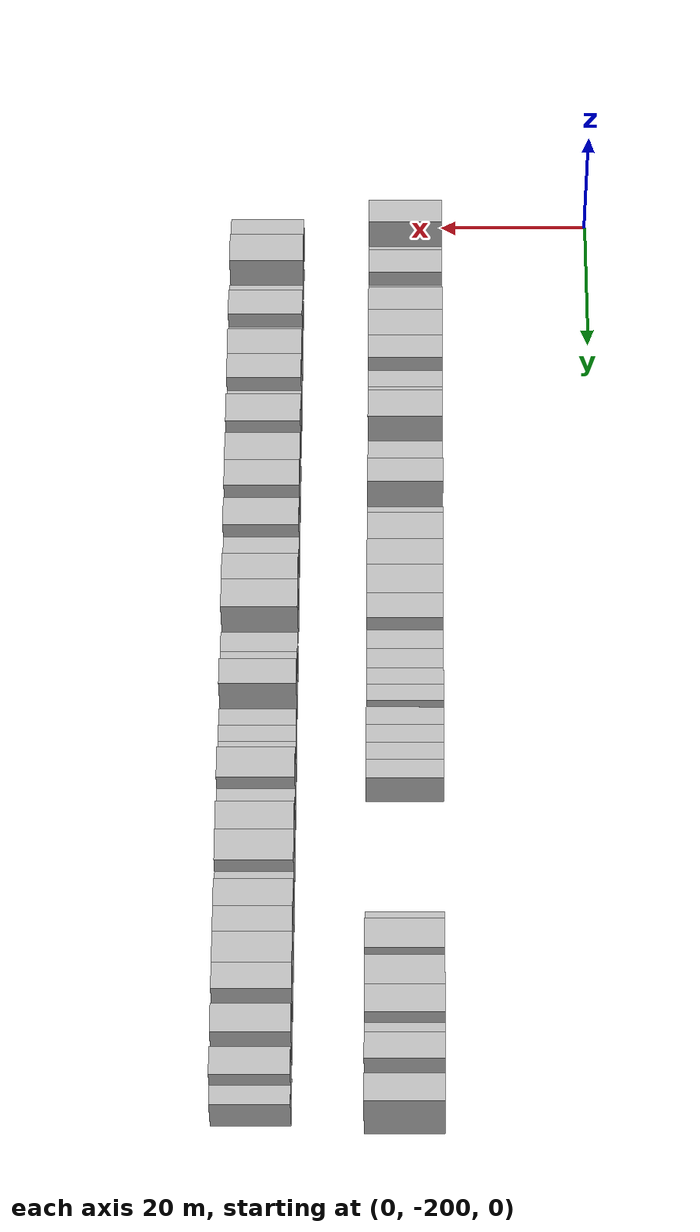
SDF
<sdf version="1.6">
 <world name="default">
  <model name="building_1">
   <static>1</static>
   <pose>25.0000 -196.1759 0 0.000000 0.000000 0.000000</pose>
   <link name="link">
    <pose>0 0 4.50 0 0 0</pose>
    <collision name="collision"><geometry><box><size>10.0000 3.6482 9.0000</size></box></geometry></collision>
    <visual name="visual">
     <cast_shadows>0</cast_shadows>
     <geometry><box><size>10.0000 3.6482 9.0000</size></box></geometry>
     <material>
      <script>
       <uri>model://HANNAS_wall/materials/scripts</uri>
       <uri>model://HANNAS_wall/materials/textures</uri>
       <name>vrc/HANNAS_wall</name>
      </script>
     </material>
    </visual>
   </link>
  </model>
  <model name="building_2">
   <static>1</static>
   <pose>25.0000 -190.9461 0 0.000000 0.000000 0.000000</pose>
   <link name="link">
    <pose>0 0 3.00 0 0 0</pose>
    <collision name="collision"><geometry><box><size>10.0000 2.8114 6.0000</size></box></geometry></collision>
    <visual name="visual">
     <cast_shadows>0</cast_shadows>
     <geometry><box><size>10.0000 2.8114 6.0000</size></box></geometry>
     <material>
      <script>
       <uri>model://HANNAS_wall/materials/scripts</uri>
       <uri>model://HANNAS_wall/materials/textures</uri>
       <name>vrc/HANNAS_wall</name>
      </script>
     </material>
    </visual>
   </link>
  </model>
  <model name="building_3">
   <static>1</static>
   <pose>25.0000 -187.6219 0 0.000000 0.000000 0.000000</pose>
   <link name="link">
    <pose>0 0 4.50 0 0 0</pose>
    <collision name="collision"><geometry><box><size>10.0000 3.8369 9.0000</size></box></geometry></collision>
    <visual name="visual">
     <cast_shadows>0</cast_shadows>
     <geometry><box><size>10.0000 3.8369 9.0000</size></box></geometry>
     <material>
      <script>
       <uri>model://HANNAS_wall/materials/scripts</uri>
       <uri>model://HANNAS_wall/materials/textures</uri>
       <name>vrc/HANNAS_wall</name>
      </script>
     </material>
    </visual>
   </link>
  </model>
  <model name="building_4">
   <static>1</static>
   <pose>25.0000 -184.4852 0 0.000000 0.000000 0.000000</pose>
   <link name="link">
    <pose>0 0 3.00 0 0 0</pose>
    <collision name="collision"><geometry><box><size>10.0000 2.4364 6.0000</size></box></geometry></collision>
    <visual name="visual">
     <cast_shadows>0</cast_shadows>
     <geometry><box><size>10.0000 2.4364 6.0000</size></box></geometry>
     <material>
      <script>
       <uri>model://HANNAS_wall/materials/scripts</uri>
       <uri>model://HANNAS_wall/materials/textures</uri>
       <name>vrc/HANNAS_wall</name>
      </script>
     </material>
    </visual>
   </link>
  </model>
  <model name="building_5">
   <static>1</static>
   <pose>25.0000 -181.3270 0 0.000000 0.000000 0.000000</pose>
   <link name="link">
    <pose>0 0 4.50 0 0 0</pose>
    <collision name="collision"><geometry><box><size>10.0000 3.8801 9.0000</size></box></geometry></collision>
    <visual name="visual">
     <cast_shadows>0</cast_shadows>
     <geometry><box><size>10.0000 3.8801 9.0000</size></box></geometry>
     <material>
      <script>
       <uri>model://HANNAS_wall/materials/scripts</uri>
       <uri>model://HANNAS_wall/materials/textures</uri>
       <name>vrc/HANNAS_wall</name>
      </script>
     </material>
    </visual>
   </link>
  </model>
  <model name="building_6">
   <static>1</static>
   <pose>25.0000 -177.2706 0 0.000000 0.000000 0.000000</pose>
   <link name="link">
    <pose>0 0 4.50 0 0 0</pose>
    <collision name="collision"><geometry><box><size>10.0000 4.2327 9.0000</size></box></geometry></collision>
    <visual name="visual">
     <cast_shadows>0</cast_shadows>
     <geometry><box><size>10.0000 4.2327 9.0000</size></box></geometry>
     <material>
      <script>
       <uri>model://HANNAS_wall/materials/scripts</uri>
       <uri>model://HANNAS_wall/materials/textures</uri>
       <name>vrc/HANNAS_wall</name>
      </script>
     </material>
    </visual>
   </link>
  </model>
  <model name="building_7">
   <static>1</static>
   <pose>25.0000 -173.2910 0 0.000000 0.000000 0.000000</pose>
   <link name="link">
    <pose>0 0 4.50 0 0 0</pose>
    <collision name="collision"><geometry><box><size>10.0000 3.7264 9.0000</size></box></geometry></collision>
    <visual name="visual">
     <cast_shadows>0</cast_shadows>
     <geometry><box><size>10.0000 3.7264 9.0000</size></box></geometry>
     <material>
      <script>
       <uri>model://HANNAS_wall/materials/scripts</uri>
       <uri>model://HANNAS_wall/materials/textures</uri>
       <name>vrc/HANNAS_wall</name>
      </script>
     </material>
    </visual>
   </link>
  </model>
  <model name="building_8">
   <static>1</static>
   <pose>25.0000 -170.0559 0 0.000000 0.000000 0.000000</pose>
   <link name="link">
    <pose>0 0 3.00 0 0 0</pose>
    <collision name="collision"><geometry><box><size>10.0000 2.7438 6.0000</size></box></geometry></collision>
    <visual name="visual">
     <cast_shadows>0</cast_shadows>
     <geometry><box><size>10.0000 2.7438 6.0000</size></box></geometry>
     <material>
      <script>
       <uri>model://HANNAS_wall/materials/scripts</uri>
       <uri>model://HANNAS_wall/materials/textures</uri>
       <name>vrc/HANNAS_wall</name>
      </script>
     </material>
    </visual>
   </link>
  </model>
  <model name="building_9">
   <static>1</static>
   <pose>25.0000 -167.3676 0 0.000000 0.000000 0.000000</pose>
   <link name="link">
    <pose>0 0 3.00 0 0 0</pose>
    <collision name="collision"><geometry><box><size>10.0000 2.6329 6.0000</size></box></geometry></collision>
    <visual name="visual">
     <cast_shadows>0</cast_shadows>
     <geometry><box><size>10.0000 2.6329 6.0000</size></box></geometry>
     <material>
      <script>
       <uri>model://HANNAS_wall/materials/scripts</uri>
       <uri>model://HANNAS_wall/materials/textures</uri>
       <name>vrc/HANNAS_wall</name>
      </script>
     </material>
    </visual>
   </link>
  </model>
  <model name="building_10">
   <static>1</static>
   <pose>25.0000 -163.9281 0 0.000000 0.000000 0.000000</pose>
   <link name="link">
    <pose>0 0 4.50 0 0 0</pose>
    <collision name="collision"><geometry><box><size>10.0000 4.2461 9.0000</size></box></geometry></collision>
    <visual name="visual">
     <cast_shadows>0</cast_shadows>
     <geometry><box><size>10.0000 4.2461 9.0000</size></box></geometry>
     <material>
      <script>
       <uri>model://HANNAS_wall/materials/scripts</uri>
       <uri>model://HANNAS_wall/materials/textures</uri>
       <name>vrc/HANNAS_wall</name>
      </script>
     </material>
    </visual>
   </link>
  </model>
  <model name="building_11">
   <static>1</static>
   <pose>25.0000 -158.4023 0 0.000000 0.000000 0.000000</pose>
   <link name="link">
    <pose>0 0 3.00 0 0 0</pose>
    <collision name="collision"><geometry><box><size>10.0000 2.8056 6.0000</size></box></geometry></collision>
    <visual name="visual">
     <cast_shadows>0</cast_shadows>
     <geometry><box><size>10.0000 2.8056 6.0000</size></box></geometry>
     <material>
      <script>
       <uri>model://HANNAS_wall/materials/scripts</uri>
       <uri>model://HANNAS_wall/materials/textures</uri>
       <name>vrc/HANNAS_wall</name>
      </script>
     </material>
    </visual>
   </link>
  </model>
  <model name="building_12">
   <static>1</static>
   <pose>25.0000 -153.1148 0 0.000000 0.000000 0.000000</pose>
   <link name="link">
    <pose>0 0 4.50 0 0 0</pose>
    <collision name="collision"><geometry><box><size>10.0000 3.7693 9.0000</size></box></geometry></collision>
    <visual name="visual">
     <cast_shadows>0</cast_shadows>
     <geometry><box><size>10.0000 3.7693 9.0000</size></box></geometry>
     <material>
      <script>
       <uri>model://HANNAS_wall/materials/scripts</uri>
       <uri>model://HANNAS_wall/materials/textures</uri>
       <name>vrc/HANNAS_wall</name>
      </script>
     </material>
    </visual>
   </link>
  </model>
  <model name="building_13">
   <static>1</static>
   <pose>25.0000 -147.7984 0 0.000000 0.000000 0.000000</pose>
   <link name="link">
    <pose>0 0 3.00 0 0 0</pose>
    <collision name="collision"><geometry><box><size>10.0000 2.8636 6.0000</size></box></geometry></collision>
    <visual name="visual">
     <cast_shadows>0</cast_shadows>
     <geometry><box><size>10.0000 2.8636 6.0000</size></box></geometry>
     <material>
      <script>
       <uri>model://HANNAS_wall/materials/scripts</uri>
       <uri>model://HANNAS_wall/materials/textures</uri>
       <name>vrc/HANNAS_wall</name>
      </script>
     </material>
    </visual>
   </link>
  </model>
  <model name="building_14">
   <static>1</static>
   <pose>25.0000 -144.2717 0 0.000000 0.000000 0.000000</pose>
   <link name="link">
    <pose>0 0 4.50 0 0 0</pose>
    <collision name="collision"><geometry><box><size>10.0000 4.1898 9.0000</size></box></geometry></collision>
    <visual name="visual">
     <cast_shadows>0</cast_shadows>
     <geometry><box><size>10.0000 4.1898 9.0000</size></box></geometry>
     <material>
      <script>
       <uri>model://HANNAS_wall/materials/scripts</uri>
       <uri>model://HANNAS_wall/materials/textures</uri>
       <name>vrc/HANNAS_wall</name>
      </script>
     </material>
    </visual>
   </link>
  </model>
  <model name="building_15">
   <static>1</static>
   <pose>25.0000 -140.1707 0 0.000000 0.000000 0.000000</pose>
   <link name="link">
    <pose>0 0 4.50 0 0 0</pose>
    <collision name="collision"><geometry><box><size>10.0000 4.0121 9.0000</size></box></geometry></collision>
    <visual name="visual">
     <cast_shadows>0</cast_shadows>
     <geometry><box><size>10.0000 4.0121 9.0000</size></box></geometry>
     <material>
      <script>
       <uri>model://HANNAS_wall/materials/scripts</uri>
       <uri>model://HANNAS_wall/materials/textures</uri>
       <name>vrc/HANNAS_wall</name>
      </script>
     </material>
    </visual>
   </link>
  </model>
  <model name="building_16">
   <static>1</static>
   <pose>25.0000 -135.9625 0 0.000000 0.000000 0.000000</pose>
   <link name="link">
    <pose>0 0 4.50 0 0 0</pose>
    <collision name="collision"><geometry><box><size>10.0000 4.4043 9.0000</size></box></geometry></collision>
    <visual name="visual">
     <cast_shadows>0</cast_shadows>
     <geometry><box><size>10.0000 4.4043 9.0000</size></box></geometry>
     <material>
      <script>
       <uri>model://HANNAS_wall/materials/scripts</uri>
       <uri>model://HANNAS_wall/materials/textures</uri>
       <name>vrc/HANNAS_wall</name>
      </script>
     </material>
    </visual>
   </link>
  </model>
  <model name="building_17">
   <static>1</static>
   <pose>25.0000 -131.8320 0 0.000000 0.000000 0.000000</pose>
   <link name="link">
    <pose>0 0 4.50 0 0 0</pose>
    <collision name="collision"><geometry><box><size>10.0000 3.8568 9.0000</size></box></geometry></collision>
    <visual name="visual">
     <cast_shadows>0</cast_shadows>
     <geometry><box><size>10.0000 3.8568 9.0000</size></box></geometry>
     <material>
      <script>
       <uri>model://HANNAS_wall/materials/scripts</uri>
       <uri>model://HANNAS_wall/materials/textures</uri>
       <name>vrc/HANNAS_wall</name>
      </script>
     </material>
    </visual>
   </link>
  </model>
  <model name="building_18">
   <static>1</static>
   <pose>25.0000 -128.4535 0 0.000000 0.000000 0.000000</pose>
   <link name="link">
    <pose>0 0 3.00 0 0 0</pose>
    <collision name="collision"><geometry><box><size>10.0000 2.9002 6.0000</size></box></geometry></collision>
    <visual name="visual">
     <cast_shadows>0</cast_shadows>
     <geometry><box><size>10.0000 2.9002 6.0000</size></box></geometry>
     <material>
      <script>
       <uri>model://HANNAS_wall/materials/scripts</uri>
       <uri>model://HANNAS_wall/materials/textures</uri>
       <name>vrc/HANNAS_wall</name>
      </script>
     </material>
    </visual>
   </link>
  </model>
  <model name="building_19">
   <static>1</static>
   <pose>25.0000 -125.5418 0 0.000000 0.000000 0.000000</pose>
   <link name="link">
    <pose>0 0 3.00 0 0 0</pose>
    <collision name="collision"><geometry><box><size>10.0000 2.9231 6.0000</size></box></geometry></collision>
    <visual name="visual">
     <cast_shadows>0</cast_shadows>
     <geometry><box><size>10.0000 2.9231 6.0000</size></box></geometry>
     <material>
      <script>
       <uri>model://HANNAS_wall/materials/scripts</uri>
       <uri>model://HANNAS_wall/materials/textures</uri>
       <name>vrc/HANNAS_wall</name>
      </script>
     </material>
    </visual>
   </link>
  </model>
  <model name="building_20">
   <static>1</static>
   <pose>25.0000 -122.8509 0 0.000000 0.000000 0.000000</pose>
   <link name="link">
    <pose>0 0 3.00 0 0 0</pose>
    <collision name="collision"><geometry><box><size>10.0000 2.4586 6.0000</size></box></geometry></collision>
    <visual name="visual">
     <cast_shadows>0</cast_shadows>
     <geometry><box><size>10.0000 2.4586 6.0000</size></box></geometry>
     <material>
      <script>
       <uri>model://HANNAS_wall/materials/scripts</uri>
       <uri>model://HANNAS_wall/materials/textures</uri>
       <name>vrc/HANNAS_wall</name>
      </script>
     </material>
    </visual>
   </link>
  </model>
  <model name="building_21">
   <static>1</static>
   <pose>25.0000 -120.3759 0 0.000000 0.000000 0.000000</pose>
   <link name="link">
    <pose>0 0 3.00 0 0 0</pose>
    <collision name="collision"><geometry><box><size>10.0000 2.4915 6.0000</size></box></geometry></collision>
    <visual name="visual">
     <cast_shadows>0</cast_shadows>
     <geometry><box><size>10.0000 2.4915 6.0000</size></box></geometry>
     <material>
      <script>
       <uri>model://HANNAS_wall/materials/scripts</uri>
       <uri>model://HANNAS_wall/materials/textures</uri>
       <name>vrc/HANNAS_wall</name>
      </script>
     </material>
    </visual>
   </link>
  </model>
  <model name="building_22">
   <static>1</static>
   <pose>25.0000 -116.8261 0 0.000000 0.000000 0.000000</pose>
   <link name="link">
    <pose>0 0 3.00 0 0 0</pose>
    <collision name="collision"><geometry><box><size>10.0000 2.6081 6.0000</size></box></geometry></collision>
    <visual name="visual">
     <cast_shadows>0</cast_shadows>
     <geometry><box><size>10.0000 2.6081 6.0000</size></box></geometry>
     <material>
      <script>
       <uri>model://HANNAS_wall/materials/scripts</uri>
       <uri>model://HANNAS_wall/materials/textures</uri>
       <name>vrc/HANNAS_wall</name>
      </script>
     </material>
    </visual>
   </link>
  </model>
  <model name="building_23">
   <static>1</static>
   <pose>25.0000 -114.1578 0 0.000000 0.000000 0.000000</pose>
   <link name="link">
    <pose>0 0 3.00 0 0 0</pose>
    <collision name="collision"><geometry><box><size>10.0000 2.7284 6.0000</size></box></geometry></collision>
    <visual name="visual">
     <cast_shadows>0</cast_shadows>
     <geometry><box><size>10.0000 2.7284 6.0000</size></box></geometry>
     <material>
      <script>
       <uri>model://HANNAS_wall/materials/scripts</uri>
       <uri>model://HANNAS_wall/materials/textures</uri>
       <name>vrc/HANNAS_wall</name>
      </script>
     </material>
    </visual>
   </link>
  </model>
  <model name="building_24">
   <static>1</static>
   <pose>25.0000 -111.5597 0 0.000000 0.000000 0.000000</pose>
   <link name="link">
    <pose>0 0 3.00 0 0 0</pose>
    <collision name="collision"><geometry><box><size>10.0000 2.4680 6.0000</size></box></geometry></collision>
    <visual name="visual">
     <cast_shadows>0</cast_shadows>
     <geometry><box><size>10.0000 2.4680 6.0000</size></box></geometry>
     <material>
      <script>
       <uri>model://HANNAS_wall/materials/scripts</uri>
       <uri>model://HANNAS_wall/materials/textures</uri>
       <name>vrc/HANNAS_wall</name>
      </script>
     </material>
    </visual>
   </link>
  </model>
  <model name="building_25">
   <static>1</static>
   <pose>25.0000 -108.9329 0 0.000000 0.000000 0.000000</pose>
   <link name="link">
    <pose>0 0 3.00 0 0 0</pose>
    <collision name="collision"><geometry><box><size>10.0000 2.7856 6.0000</size></box></geometry></collision>
    <visual name="visual">
     <cast_shadows>0</cast_shadows>
     <geometry><box><size>10.0000 2.7856 6.0000</size></box></geometry>
     <material>
      <script>
       <uri>model://HANNAS_wall/materials/scripts</uri>
       <uri>model://HANNAS_wall/materials/textures</uri>
       <name>vrc/HANNAS_wall</name>
      </script>
     </material>
    </visual>
   </link>
  </model>
  <model name="building_26">
   <static>1</static>
   <pose>25.0000 -86.7555 0 0.000000 0.000000 0.000000</pose>
   <link name="link">
    <pose>0 0 3.00 0 0 0</pose>
    <collision name="collision"><geometry><box><size>10.0000 2.5230 6.0000</size></box></geometry></collision>
    <visual name="visual">
     <cast_shadows>0</cast_shadows>
     <geometry><box><size>10.0000 2.5230 6.0000</size></box></geometry>
     <material>
      <script>
       <uri>model://HANNAS_wall/materials/scripts</uri>
       <uri>model://HANNAS_wall/materials/textures</uri>
       <name>vrc/HANNAS_wall</name>
      </script>
     </material>
    </visual>
   </link>
  </model>
  <model name="building_27">
   <static>1</static>
   <pose>25.0000 -83.4109 0 0.000000 0.000000 0.000000</pose>
   <link name="link">
    <pose>0 0 4.50 0 0 0</pose>
    <collision name="collision"><geometry><box><size>10.0000 4.1663 9.0000</size></box></geometry></collision>
    <visual name="visual">
     <cast_shadows>0</cast_shadows>
     <geometry><box><size>10.0000 4.1663 9.0000</size></box></geometry>
     <material>
      <script>
       <uri>model://HANNAS_wall/materials/scripts</uri>
       <uri>model://HANNAS_wall/materials/textures</uri>
       <name>vrc/HANNAS_wall</name>
      </script>
     </material>
    </visual>
   </link>
  </model>
  <model name="building_28">
   <static>1</static>
   <pose>25.0000 -78.2831 0 0.000000 0.000000 0.000000</pose>
   <link name="link">
    <pose>0 0 4.50 0 0 0</pose>
    <collision name="collision"><geometry><box><size>10.0000 4.0893 9.0000</size></box></geometry></collision>
    <visual name="visual">
     <cast_shadows>0</cast_shadows>
     <geometry><box><size>10.0000 4.0893 9.0000</size></box></geometry>
     <material>
      <script>
       <uri>model://HANNAS_wall/materials/scripts</uri>
       <uri>model://HANNAS_wall/materials/textures</uri>
       <name>vrc/HANNAS_wall</name>
      </script>
     </material>
    </visual>
   </link>
  </model>
  <model name="building_29">
   <static>1</static>
   <pose>25.0000 -74.3078 0 0.000000 0.000000 0.000000</pose>
   <link name="link">
    <pose>0 0 4.50 0 0 0</pose>
    <collision name="collision"><geometry><box><size>10.0000 3.8613 9.0000</size></box></geometry></collision>
    <visual name="visual">
     <cast_shadows>0</cast_shadows>
     <geometry><box><size>10.0000 3.8613 9.0000</size></box></geometry>
     <material>
      <script>
       <uri>model://HANNAS_wall/materials/scripts</uri>
       <uri>model://HANNAS_wall/materials/textures</uri>
       <name>vrc/HANNAS_wall</name>
      </script>
     </material>
    </visual>
   </link>
  </model>
  <model name="building_30">
   <static>1</static>
   <pose>25.0000 -70.9786 0 0.000000 0.000000 0.000000</pose>
   <link name="link">
    <pose>0 0 3.00 0 0 0</pose>
    <collision name="collision"><geometry><box><size>10.0000 2.7971 6.0000</size></box></geometry></collision>
    <visual name="visual">
     <cast_shadows>0</cast_shadows>
     <geometry><box><size>10.0000 2.7971 6.0000</size></box></geometry>
     <material>
      <script>
       <uri>model://HANNAS_wall/materials/scripts</uri>
       <uri>model://HANNAS_wall/materials/textures</uri>
       <name>vrc/HANNAS_wall</name>
      </script>
     </material>
    </visual>
   </link>
  </model>
  <model name="building_31">
   <static>1</static>
   <pose>25.0000 -67.7646 0 0.000000 0.000000 0.000000</pose>
   <link name="link">
    <pose>0 0 4.50 0 0 0</pose>
    <collision name="collision"><geometry><box><size>10.0000 3.6309 9.0000</size></box></geometry></collision>
    <visual name="visual">
     <cast_shadows>0</cast_shadows>
     <geometry><box><size>10.0000 3.6309 9.0000</size></box></geometry>
     <material>
      <script>
       <uri>model://HANNAS_wall/materials/scripts</uri>
       <uri>model://HANNAS_wall/materials/textures</uri>
       <name>vrc/HANNAS_wall</name>
      </script>
     </material>
    </visual>
   </link>
  </model>
  <model name="building_32">
   <static>1</static>
   <pose>25.0000 -62.0413 0 0.000000 0.000000 0.000000</pose>
   <link name="link">
    <pose>0 0 4.50 0 0 0</pose>
    <collision name="collision"><geometry><box><size>10.0000 3.8157 9.0000</size></box></geometry></collision>
    <visual name="visual">
     <cast_shadows>0</cast_shadows>
     <geometry><box><size>10.0000 3.8157 9.0000</size></box></geometry>
     <material>
      <script>
       <uri>model://HANNAS_wall/materials/scripts</uri>
       <uri>model://HANNAS_wall/materials/textures</uri>
       <name>vrc/HANNAS_wall</name>
      </script>
     </material>
    </visual>
   </link>
  </model>
  <model name="building_98">
   <static>1</static>
   <pose>44.0000 -195.5856 0 0.000000 0.000000 0.000000</pose>
   <link name="link">
    <pose>0 0 3.00 0 0 0</pose>
    <collision name="collision"><geometry><box><size>10.0000 2.8288 6.0000</size></box></geometry></collision>
    <visual name="visual">
     <cast_shadows>0</cast_shadows>
     <geometry><box><size>10.0000 2.8288 6.0000</size></box></geometry>
     <material>
      <script>
       <uri>model://HANNAS_wall/materials/scripts</uri>
       <uri>model://HANNAS_wall/materials/textures</uri>
       <name>vrc/HANNAS_wall</name>
      </script>
     </material>
    </visual>
   </link>
  </model>
  <model name="building_99">
   <static>1</static>
   <pose>44.0000 -189.9322 0 0.000000 0.000000 0.000000</pose>
   <link name="link">
    <pose>0 0 4.50 0 0 0</pose>
    <collision name="collision"><geometry><box><size>10.0000 4.4779 9.0000</size></box></geometry></collision>
    <visual name="visual">
     <cast_shadows>0</cast_shadows>
     <geometry><box><size>10.0000 4.4779 9.0000</size></box></geometry>
     <material>
      <script>
       <uri>model://HANNAS_wall/materials/scripts</uri>
       <uri>model://HANNAS_wall/materials/textures</uri>
       <name>vrc/HANNAS_wall</name>
      </script>
     </material>
    </visual>
   </link>
  </model>
  <model name="building_100">
   <static>1</static>
   <pose>44.0000 -184.2077 0 0.000000 0.000000 0.000000</pose>
   <link name="link">
    <pose>0 0 3.00 0 0 0</pose>
    <collision name="collision"><geometry><box><size>10.0000 2.9712 6.0000</size></box></geometry></collision>
    <visual name="visual">
     <cast_shadows>0</cast_shadows>
     <geometry><box><size>10.0000 2.9712 6.0000</size></box></geometry>
     <material>
      <script>
       <uri>model://HANNAS_wall/materials/scripts</uri>
       <uri>model://HANNAS_wall/materials/textures</uri>
       <name>vrc/HANNAS_wall</name>
      </script>
     </material>
    </visual>
   </link>
  </model>
  <model name="building_101">
   <static>1</static>
   <pose>44.0000 -180.6992 0 0.000000 0.000000 0.000000</pose>
   <link name="link">
    <pose>0 0 4.50 0 0 0</pose>
    <collision name="collision"><geometry><box><size>10.0000 4.0458 9.0000</size></box></geometry></collision>
    <visual name="visual">
     <cast_shadows>0</cast_shadows>
     <geometry><box><size>10.0000 4.0458 9.0000</size></box></geometry>
     <material>
      <script>
       <uri>model://HANNAS_wall/materials/scripts</uri>
       <uri>model://HANNAS_wall/materials/textures</uri>
       <name>vrc/HANNAS_wall</name>
      </script>
     </material>
    </visual>
   </link>
  </model>
  <model name="building_102">
   <static>1</static>
   <pose>44.0000 -177.4513 0 0.000000 0.000000 0.000000</pose>
   <link name="link">
    <pose>0 0 3.00 0 0 0</pose>
    <collision name="collision"><geometry><box><size>10.0000 2.4502 6.0000</size></box></geometry></collision>
    <visual name="visual">
     <cast_shadows>0</cast_shadows>
     <geometry><box><size>10.0000 2.4502 6.0000</size></box></geometry>
     <material>
      <script>
       <uri>model://HANNAS_wall/materials/scripts</uri>
       <uri>model://HANNAS_wall/materials/textures</uri>
       <name>vrc/HANNAS_wall</name>
      </script>
     </material>
    </visual>
   </link>
  </model>
  <model name="building_103">
   <static>1</static>
   <pose>44.0000 -174.1249 0 0.000000 0.000000 0.000000</pose>
   <link name="link">
    <pose>0 0 4.50 0 0 0</pose>
    <collision name="collision"><geometry><box><size>10.0000 4.2026 9.0000</size></box></geometry></collision>
    <visual name="visual">
     <cast_shadows>0</cast_shadows>
     <geometry><box><size>10.0000 4.2026 9.0000</size></box></geometry>
     <material>
      <script>
       <uri>model://HANNAS_wall/materials/scripts</uri>
       <uri>model://HANNAS_wall/materials/textures</uri>
       <name>vrc/HANNAS_wall</name>
      </script>
     </material>
    </visual>
   </link>
  </model>
  <model name="building_104">
   <static>1</static>
   <pose>44.0000 -170.0517 0 0.000000 0.000000 0.000000</pose>
   <link name="link">
    <pose>0 0 4.50 0 0 0</pose>
    <collision name="collision"><geometry><box><size>10.0000 3.9438 9.0000</size></box></geometry></collision>
    <visual name="visual">
     <cast_shadows>0</cast_shadows>
     <geometry><box><size>10.0000 3.9438 9.0000</size></box></geometry>
     <material>
      <script>
       <uri>model://HANNAS_wall/materials/scripts</uri>
       <uri>model://HANNAS_wall/materials/textures</uri>
       <name>vrc/HANNAS_wall</name>
      </script>
     </material>
    </visual>
   </link>
  </model>
  <model name="building_105">
   <static>1</static>
   <pose>44.0000 -166.7407 0 0.000000 0.000000 0.000000</pose>
   <link name="link">
    <pose>0 0 3.00 0 0 0</pose>
    <collision name="collision"><geometry><box><size>10.0000 2.6783 6.0000</size></box></geometry></collision>
    <visual name="visual">
     <cast_shadows>0</cast_shadows>
     <geometry><box><size>10.0000 2.6783 6.0000</size></box></geometry>
     <material>
      <script>
       <uri>model://HANNAS_wall/materials/scripts</uri>
       <uri>model://HANNAS_wall/materials/textures</uri>
       <name>vrc/HANNAS_wall</name>
      </script>
     </material>
    </visual>
   </link>
  </model>
  <model name="building_106">
   <static>1</static>
   <pose>44.0000 -163.2343 0 0.000000 0.000000 0.000000</pose>
   <link name="link">
    <pose>0 0 4.50 0 0 0</pose>
    <collision name="collision"><geometry><box><size>10.0000 4.3345 9.0000</size></box></geometry></collision>
    <visual name="visual">
     <cast_shadows>0</cast_shadows>
     <geometry><box><size>10.0000 4.3345 9.0000</size></box></geometry>
     <material>
      <script>
       <uri>model://HANNAS_wall/materials/scripts</uri>
       <uri>model://HANNAS_wall/materials/textures</uri>
       <name>vrc/HANNAS_wall</name>
      </script>
     </material>
    </visual>
   </link>
  </model>
  <model name="building_107">
   <static>1</static>
   <pose>44.0000 -156.8889 0 0.000000 0.000000 0.000000</pose>
   <link name="link">
    <pose>0 0 4.50 0 0 0</pose>
    <collision name="collision"><geometry><box><size>10.0000 4.3564 9.0000</size></box></geometry></collision>
    <visual name="visual">
     <cast_shadows>0</cast_shadows>
     <geometry><box><size>10.0000 4.3564 9.0000</size></box></geometry>
     <material>
      <script>
       <uri>model://HANNAS_wall/materials/scripts</uri>
       <uri>model://HANNAS_wall/materials/textures</uri>
       <name>vrc/HANNAS_wall</name>
      </script>
     </material>
    </visual>
   </link>
  </model>
  <model name="building_108">
   <static>1</static>
   <pose>44.0000 -152.6912 0 0.000000 0.000000 0.000000</pose>
   <link name="link">
    <pose>0 0 4.50 0 0 0</pose>
    <collision name="collision"><geometry><box><size>10.0000 4.0389 9.0000</size></box></geometry></collision>
    <visual name="visual">
     <cast_shadows>0</cast_shadows>
     <geometry><box><size>10.0000 4.0389 9.0000</size></box></geometry>
     <material>
      <script>
       <uri>model://HANNAS_wall/materials/scripts</uri>
       <uri>model://HANNAS_wall/materials/textures</uri>
       <name>vrc/HANNAS_wall</name>
      </script>
     </material>
    </visual>
   </link>
  </model>
  <model name="building_109">
   <static>1</static>
   <pose>44.0000 -146.5311 0 0.000000 0.000000 0.000000</pose>
   <link name="link">
    <pose>0 0 4.50 0 0 0</pose>
    <collision name="collision"><geometry><box><size>10.0000 4.2814 9.0000</size></box></geometry></collision>
    <visual name="visual">
     <cast_shadows>0</cast_shadows>
     <geometry><box><size>10.0000 4.2814 9.0000</size></box></geometry>
     <material>
      <script>
       <uri>model://HANNAS_wall/materials/scripts</uri>
       <uri>model://HANNAS_wall/materials/textures</uri>
       <name>vrc/HANNAS_wall</name>
      </script>
     </material>
    </visual>
   </link>
  </model>
  <model name="building_110">
   <static>1</static>
   <pose>44.0000 -143.1243 0 0.000000 0.000000 0.000000</pose>
   <link name="link">
    <pose>0 0 3.00 0 0 0</pose>
    <collision name="collision"><geometry><box><size>10.0000 2.5321 6.0000</size></box></geometry></collision>
    <visual name="visual">
     <cast_shadows>0</cast_shadows>
     <geometry><box><size>10.0000 2.5321 6.0000</size></box></geometry>
     <material>
      <script>
       <uri>model://HANNAS_wall/materials/scripts</uri>
       <uri>model://HANNAS_wall/materials/textures</uri>
       <name>vrc/HANNAS_wall</name>
      </script>
     </material>
    </visual>
   </link>
  </model>
  <model name="building_111">
   <static>1</static>
   <pose>44.0000 -137.8429 0 0.000000 0.000000 0.000000</pose>
   <link name="link">
    <pose>0 0 4.50 0 0 0</pose>
    <collision name="collision"><geometry><box><size>10.0000 4.0307 9.0000</size></box></geometry></collision>
    <visual name="visual">
     <cast_shadows>0</cast_shadows>
     <geometry><box><size>10.0000 4.0307 9.0000</size></box></geometry>
     <material>
      <script>
       <uri>model://HANNAS_wall/materials/scripts</uri>
       <uri>model://HANNAS_wall/materials/textures</uri>
       <name>vrc/HANNAS_wall</name>
      </script>
     </material>
    </visual>
   </link>
  </model>
  <model name="building_112">
   <static>1</static>
   <pose>44.0000 -133.6711 0 0.000000 0.000000 0.000000</pose>
   <link name="link">
    <pose>0 0 4.50 0 0 0</pose>
    <collision name="collision"><geometry><box><size>10.0000 4.3130 9.0000</size></box></geometry></collision>
    <visual name="visual">
     <cast_shadows>0</cast_shadows>
     <geometry><box><size>10.0000 4.3130 9.0000</size></box></geometry>
     <material>
      <script>
       <uri>model://HANNAS_wall/materials/scripts</uri>
       <uri>model://HANNAS_wall/materials/textures</uri>
       <name>vrc/HANNAS_wall</name>
      </script>
     </material>
    </visual>
   </link>
  </model>
  <model name="building_113">
   <static>1</static>
   <pose>44.0000 -128.0324 0 0.000000 0.000000 0.000000</pose>
   <link name="link">
    <pose>0 0 3.00 0 0 0</pose>
    <collision name="collision"><geometry><box><size>10.0000 2.9642 6.0000</size></box></geometry></collision>
    <visual name="visual">
     <cast_shadows>0</cast_shadows>
     <geometry><box><size>10.0000 2.9642 6.0000</size></box></geometry>
     <material>
      <script>
       <uri>model://HANNAS_wall/materials/scripts</uri>
       <uri>model://HANNAS_wall/materials/textures</uri>
       <name>vrc/HANNAS_wall</name>
      </script>
     </material>
    </visual>
   </link>
  </model>
  <model name="building_114">
   <static>1</static>
   <pose>44.0000 -125.0852 0 0.000000 0.000000 0.000000</pose>
   <link name="link">
    <pose>0 0 3.00 0 0 0</pose>
    <collision name="collision"><geometry><box><size>10.0000 2.9302 6.0000</size></box></geometry></collision>
    <visual name="visual">
     <cast_shadows>0</cast_shadows>
     <geometry><box><size>10.0000 2.9302 6.0000</size></box></geometry>
     <material>
      <script>
       <uri>model://HANNAS_wall/materials/scripts</uri>
       <uri>model://HANNAS_wall/materials/textures</uri>
       <name>vrc/HANNAS_wall</name>
      </script>
     </material>
    </visual>
   </link>
  </model>
  <model name="building_115">
   <static>1</static>
   <pose>44.0000 -121.7104 0 0.000000 0.000000 0.000000</pose>
   <link name="link">
    <pose>0 0 4.50 0 0 0</pose>
    <collision name="collision"><geometry><box><size>10.0000 3.8193 9.0000</size></box></geometry></collision>
    <visual name="visual">
     <cast_shadows>0</cast_shadows>
     <geometry><box><size>10.0000 3.8193 9.0000</size></box></geometry>
     <material>
      <script>
       <uri>model://HANNAS_wall/materials/scripts</uri>
       <uri>model://HANNAS_wall/materials/textures</uri>
       <name>vrc/HANNAS_wall</name>
      </script>
     </material>
    </visual>
   </link>
  </model>
  <model name="building_116">
   <static>1</static>
   <pose>44.0000 -116.5721 0 0.000000 0.000000 0.000000</pose>
   <link name="link">
    <pose>0 0 3.00 0 0 0</pose>
    <collision name="collision"><geometry><box><size>10.0000 2.4574 6.0000</size></box></geometry></collision>
    <visual name="visual">
     <cast_shadows>0</cast_shadows>
     <geometry><box><size>10.0000 2.4574 6.0000</size></box></geometry>
     <material>
      <script>
       <uri>model://HANNAS_wall/materials/scripts</uri>
       <uri>model://HANNAS_wall/materials/textures</uri>
       <name>vrc/HANNAS_wall</name>
      </script>
     </material>
    </visual>
   </link>
  </model>
  <model name="building_117">
   <static>1</static>
   <pose>44.0000 -114.1385 0 0.000000 0.000000 0.000000</pose>
   <link name="link">
    <pose>0 0 3.00 0 0 0</pose>
    <collision name="collision"><geometry><box><size>10.0000 2.4098 6.0000</size></box></geometry></collision>
    <visual name="visual">
     <cast_shadows>0</cast_shadows>
     <geometry><box><size>10.0000 2.4098 6.0000</size></box></geometry>
     <material>
      <script>
       <uri>model://HANNAS_wall/materials/scripts</uri>
       <uri>model://HANNAS_wall/materials/textures</uri>
       <name>vrc/HANNAS_wall</name>
      </script>
     </material>
    </visual>
   </link>
  </model>
  <model name="building_118">
   <static>1</static>
   <pose>44.0000 -111.6239 0 0.000000 0.000000 0.000000</pose>
   <link name="link">
    <pose>0 0 3.00 0 0 0</pose>
    <collision name="collision"><geometry><box><size>10.0000 2.6194 6.0000</size></box></geometry></collision>
    <visual name="visual">
     <cast_shadows>0</cast_shadows>
     <geometry><box><size>10.0000 2.6194 6.0000</size></box></geometry>
     <material>
      <script>
       <uri>model://HANNAS_wall/materials/scripts</uri>
       <uri>model://HANNAS_wall/materials/textures</uri>
       <name>vrc/HANNAS_wall</name>
      </script>
     </material>
    </visual>
   </link>
  </model>
  <model name="building_119">
   <static>1</static>
   <pose>44.0000 -108.1079 0 0.000000 0.000000 0.000000</pose>
   <link name="link">
    <pose>0 0 4.50 0 0 0</pose>
    <collision name="collision"><geometry><box><size>10.0000 4.4125 9.0000</size></box></geometry></collision>
    <visual name="visual">
     <cast_shadows>0</cast_shadows>
     <geometry><box><size>10.0000 4.4125 9.0000</size></box></geometry>
     <material>
      <script>
       <uri>model://HANNAS_wall/materials/scripts</uri>
       <uri>model://HANNAS_wall/materials/textures</uri>
       <name>vrc/HANNAS_wall</name>
      </script>
     </material>
    </visual>
   </link>
  </model>
  <model name="building_120">
   <static>1</static>
   <pose>44.0000 -104.5921 0 0.000000 0.000000 0.000000</pose>
   <link name="link">
    <pose>0 0 3.00 0 0 0</pose>
    <collision name="collision"><geometry><box><size>10.0000 2.6190 6.0000</size></box></geometry></collision>
    <visual name="visual">
     <cast_shadows>0</cast_shadows>
     <geometry><box><size>10.0000 2.6190 6.0000</size></box></geometry>
     <material>
      <script>
       <uri>model://HANNAS_wall/materials/scripts</uri>
       <uri>model://HANNAS_wall/materials/textures</uri>
       <name>vrc/HANNAS_wall</name>
      </script>
     </material>
    </visual>
   </link>
  </model>
  <model name="building_121">
   <static>1</static>
   <pose>44.0000 -100.2775 0 0.000000 0.000000 0.000000</pose>
   <link name="link">
    <pose>0 0 4.50 0 0 0</pose>
    <collision name="collision"><geometry><box><size>10.0000 4.0102 9.0000</size></box></geometry></collision>
    <visual name="visual">
     <cast_shadows>0</cast_shadows>
     <geometry><box><size>10.0000 4.0102 9.0000</size></box></geometry>
     <material>
      <script>
       <uri>model://HANNAS_wall/materials/scripts</uri>
       <uri>model://HANNAS_wall/materials/textures</uri>
       <name>vrc/HANNAS_wall</name>
      </script>
     </material>
    </visual>
   </link>
  </model>
  <model name="building_122">
   <static>1</static>
   <pose>44.0000 -96.0331 0 0.000000 0.000000 0.000000</pose>
   <link name="link">
    <pose>0 0 4.50 0 0 0</pose>
    <collision name="collision"><geometry><box><size>10.0000 4.4786 9.0000</size></box></geometry></collision>
    <visual name="visual">
     <cast_shadows>0</cast_shadows>
     <geometry><box><size>10.0000 4.4786 9.0000</size></box></geometry>
     <material>
      <script>
       <uri>model://HANNAS_wall/materials/scripts</uri>
       <uri>model://HANNAS_wall/materials/textures</uri>
       <name>vrc/HANNAS_wall</name>
      </script>
     </material>
    </visual>
   </link>
  </model>
  <model name="building_123">
   <static>1</static>
   <pose>44.0000 -92.4263 0 0.000000 0.000000 0.000000</pose>
   <link name="link">
    <pose>0 0 3.00 0 0 0</pose>
    <collision name="collision"><geometry><box><size>10.0000 2.7348 6.0000</size></box></geometry></collision>
    <visual name="visual">
     <cast_shadows>0</cast_shadows>
     <geometry><box><size>10.0000 2.7348 6.0000</size></box></geometry>
     <material>
      <script>
       <uri>model://HANNAS_wall/materials/scripts</uri>
       <uri>model://HANNAS_wall/materials/textures</uri>
       <name>vrc/HANNAS_wall</name>
      </script>
     </material>
    </visual>
   </link>
  </model>
  <model name="building_124">
   <static>1</static>
   <pose>44.0000 -89.1415 0 0.000000 0.000000 0.000000</pose>
   <link name="link">
    <pose>0 0 4.50 0 0 0</pose>
    <collision name="collision"><geometry><box><size>10.0000 3.8347 9.0000</size></box></geometry></collision>
    <visual name="visual">
     <cast_shadows>0</cast_shadows>
     <geometry><box><size>10.0000 3.8347 9.0000</size></box></geometry>
     <material>
      <script>
       <uri>model://HANNAS_wall/materials/scripts</uri>
       <uri>model://HANNAS_wall/materials/textures</uri>
       <name>vrc/HANNAS_wall</name>
      </script>
     </material>
    </visual>
   </link>
  </model>
  <model name="building_125">
   <static>1</static>
   <pose>44.0000 -85.4024 0 0.000000 0.000000 0.000000</pose>
   <link name="link">
    <pose>0 0 4.50 0 0 0</pose>
    <collision name="collision"><geometry><box><size>10.0000 3.6436 9.0000</size></box></geometry></collision>
    <visual name="visual">
     <cast_shadows>0</cast_shadows>
     <geometry><box><size>10.0000 3.6436 9.0000</size></box></geometry>
     <material>
      <script>
       <uri>model://HANNAS_wall/materials/scripts</uri>
       <uri>model://HANNAS_wall/materials/textures</uri>
       <name>vrc/HANNAS_wall</name>
      </script>
     </material>
    </visual>
   </link>
  </model>
  <model name="building_126">
   <static>1</static>
   <pose>44.0000 -81.4092 0 0.000000 0.000000 0.000000</pose>
   <link name="link">
    <pose>0 0 4.50 0 0 0</pose>
    <collision name="collision"><geometry><box><size>10.0000 4.3428 9.0000</size></box></geometry></collision>
    <visual name="visual">
     <cast_shadows>0</cast_shadows>
     <geometry><box><size>10.0000 4.3428 9.0000</size></box></geometry>
     <material>
      <script>
       <uri>model://HANNAS_wall/materials/scripts</uri>
       <uri>model://HANNAS_wall/materials/textures</uri>
       <name>vrc/HANNAS_wall</name>
      </script>
     </material>
    </visual>
   </link>
  </model>
  <model name="building_127">
   <static>1</static>
   <pose>44.0000 -77.3791 0 0.000000 0.000000 0.000000</pose>
   <link name="link">
    <pose>0 0 4.50 0 0 0</pose>
    <collision name="collision"><geometry><box><size>10.0000 3.7175 9.0000</size></box></geometry></collision>
    <visual name="visual">
     <cast_shadows>0</cast_shadows>
     <geometry><box><size>10.0000 3.7175 9.0000</size></box></geometry>
     <material>
      <script>
       <uri>model://HANNAS_wall/materials/scripts</uri>
       <uri>model://HANNAS_wall/materials/textures</uri>
       <name>vrc/HANNAS_wall</name>
      </script>
     </material>
    </visual>
   </link>
  </model>
  <model name="building_128">
   <static>1</static>
   <pose>44.0000 -71.5294 0 0.000000 0.000000 0.000000</pose>
   <link name="link">
    <pose>0 0 4.50 0 0 0</pose>
    <collision name="collision"><geometry><box><size>10.0000 3.9819 9.0000</size></box></geometry></collision>
    <visual name="visual">
     <cast_shadows>0</cast_shadows>
     <geometry><box><size>10.0000 3.9819 9.0000</size></box></geometry>
     <material>
      <script>
       <uri>model://HANNAS_wall/materials/scripts</uri>
       <uri>model://HANNAS_wall/materials/textures</uri>
       <name>vrc/HANNAS_wall</name>
      </script>
     </material>
    </visual>
   </link>
  </model>
  <model name="building_129">
   <static>1</static>
   <pose>44.0000 -65.6387 0 0.000000 0.000000 0.000000</pose>
   <link name="link">
    <pose>0 0 4.50 0 0 0</pose>
    <collision name="collision"><geometry><box><size>10.0000 3.7996 9.0000</size></box></geometry></collision>
    <visual name="visual">
     <cast_shadows>0</cast_shadows>
     <geometry><box><size>10.0000 3.7996 9.0000</size></box></geometry>
     <material>
      <script>
       <uri>model://HANNAS_wall/materials/scripts</uri>
       <uri>model://HANNAS_wall/materials/textures</uri>
       <name>vrc/HANNAS_wall</name>
      </script>
     </material>
    </visual>
   </link>
  </model>
  <model name="building_130">
   <static>1</static>
   <pose>44.0000 -62.4545 0 0.000000 0.000000 0.000000</pose>
   <link name="link">
    <pose>0 0 3.00 0 0 0</pose>
    <collision name="collision"><geometry><box><size>10.0000 2.5687 6.0000</size></box></geometry></collision>
    <visual name="visual">
     <cast_shadows>0</cast_shadows>
     <geometry><box><size>10.0000 2.5687 6.0000</size></box></geometry>
     <material>
      <script>
       <uri>model://HANNAS_wall/materials/scripts</uri>
       <uri>model://HANNAS_wall/materials/textures</uri>
       <name>vrc/HANNAS_wall</name>
      </script>
     </material>
    </visual>
   </link>
  </model>
 </world>
</sdf>
